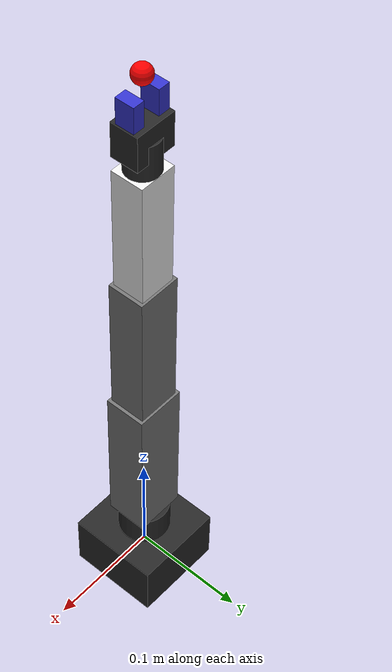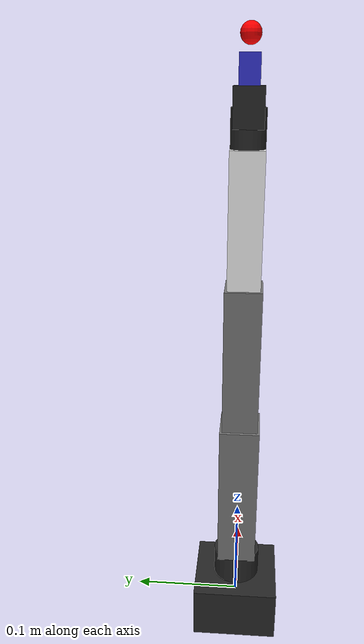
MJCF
<mujoco model="so_arm101">

  <asset>
    <material name="arm_dark"  rgba="0.15 0.15 0.15 1"/>
    <material name="arm_gray"  rgba="0.45 0.45 0.45 1"/>
    <material name="arm_white" rgba="0.92 0.92 0.92 1"/>
    <material name="gripper_mat" rgba="0.2 0.2 0.8 1"/>
  </asset>

  <worldbody>
    <!-- arm base is attached as a child body of the climber in scene.xml -->
    <body name="arm_base" pos="0 0 0">
      <geom name="arm_base_geom" type="box" size="0.04 0.04 0.025"
            material="arm_dark" mass="0.18"/>

      <!-- Joint 1: shoulder pan -->
      <body name="shoulder_pan_link" pos="0 0 0.025">
        <joint name="joint1_shoulder_pan" type="hinge" axis="0 0 1"
               range="-3.14159 3.14159" damping="0.5" armature="0.01"/>
        <geom type="cylinder" size="0.022 0.028" material="arm_dark" mass="0.12"/>

        <!-- Joint 2: shoulder lift -->
        <body name="shoulder_lift_link" pos="0 0 0.028">
          <joint name="joint2_shoulder_lift" type="hinge" axis="0 1 0"
                 range="-1.5708 1.5708" damping="0.5" armature="0.01"/>
          <geom type="box" size="0.022 0.018 0.07" pos="0 0 0.07"
                material="arm_gray" mass="0.18"/>

          <!-- Joint 3: elbow -->
          <body name="upper_arm_link" pos="0 0 0.14">
            <joint name="joint3_elbow" type="hinge" axis="0 1 0"
                   range="-2.8 2.8" damping="0.4" armature="0.008"/>
            <geom type="box" size="0.019 0.016 0.065" pos="0 0 0.065"
                  material="arm_gray" mass="0.14"/>

            <!-- Joint 4: wrist flex -->
            <body name="forearm_link" pos="0 0 0.13">
              <joint name="joint4_wrist_flex" type="hinge" axis="0 1 0"
                     range="-1.5708 1.5708" damping="0.3" armature="0.005"/>
              <geom type="box" size="0.016 0.014 0.055" pos="0 0 0.055"
                    material="arm_white" mass="0.10"/>

              <!-- Joint 5: wrist roll -->
              <body name="wrist_link" pos="0 0 0.11">
                <joint name="joint5_wrist_roll" type="hinge" axis="0 0 1"
                       range="-3.14159 3.14159" damping="0.2" armature="0.003"/>
                <geom type="cylinder" size="0.014 0.03" material="arm_dark" mass="0.06"/>

                <!-- Joint 6: gripper -->
                <body name="gripper_base" pos="0 0 0.03">
                  <geom type="box" size="0.018 0.012 0.015" material="arm_dark" mass="0.04"/>

                  <body name="finger_left" pos="0.012 0 0.015">
                    <joint name="joint6_gripper" type="slide" axis="1 0 0"
                           range="0 0.025" damping="0.1"/>
                    <geom type="box" size="0.005 0.008 0.022" material="gripper_mat" mass="0.01"/>
                  </body>

                  <body name="finger_right" pos="-0.012 0 0.015">
                    <joint name="joint6_gripper_mirror" type="slide" axis="-1 0 0"
                           range="0 0.025" damping="0.1"/>
                    <geom type="box" size="0.005 0.008 0.022" material="gripper_mat" mass="0.01"/>
                  </body>

                  <!-- end-effector site for task-space control -->
                  <site name="ee_site" pos="0 0 0.05" size="0.008" rgba="1 0 0 1"/>
                </body>
              </body>
            </body>
          </body>
        </body>
      </body>
    </body>
  </worldbody>

  <actuator>
    <motor name="act_shoulder_pan"  joint="joint1_shoulder_pan"  gear="50"  ctrlrange="-3.0 3.0"/>
    <motor name="act_shoulder_lift" joint="joint2_shoulder_lift" gear="80"  ctrlrange="-3.0 3.0"/>
    <motor name="act_elbow"         joint="joint3_elbow"         gear="60"  ctrlrange="-3.0 3.0"/>
    <motor name="act_wrist_flex"    joint="joint4_wrist_flex"    gear="30"  ctrlrange="-2.0 2.0"/>
    <motor name="act_wrist_roll"    joint="joint5_wrist_roll"    gear="20"  ctrlrange="-2.0 2.0"/>
    <motor name="act_gripper"       joint="joint6_gripper"       gear="5"   ctrlrange="-1.0 1.0"/>
  </actuator>

</mujoco>
